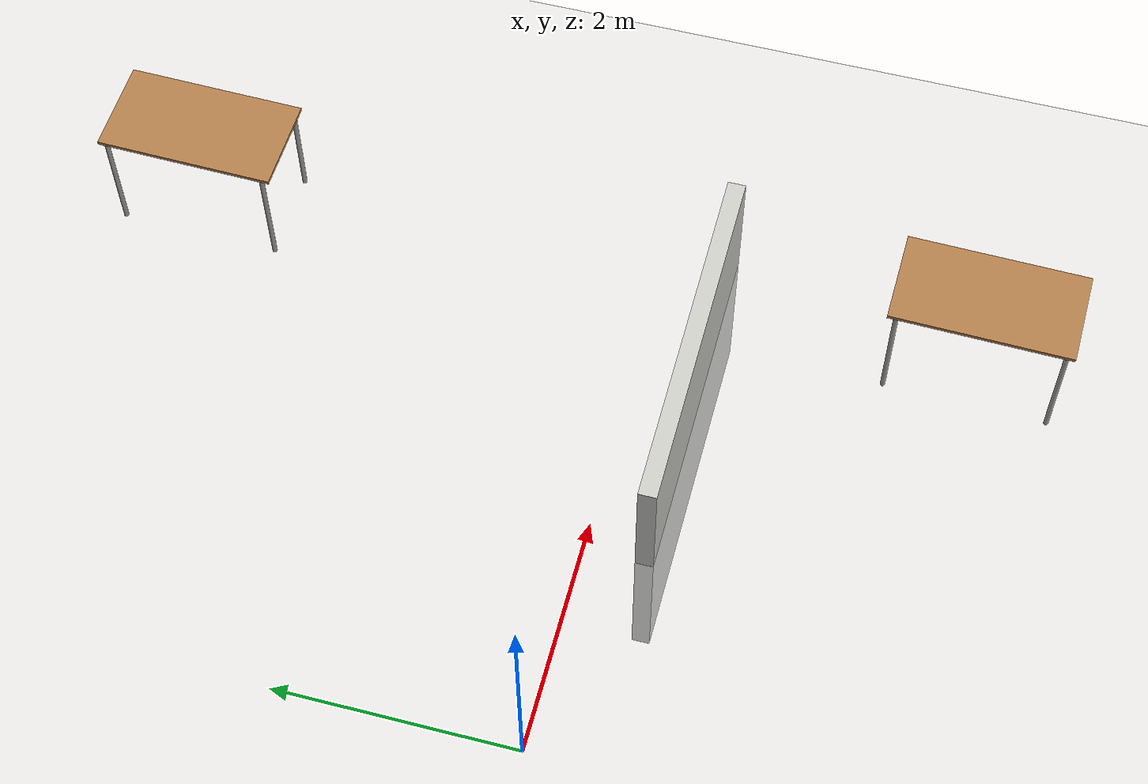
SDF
<sdf version="1.7">
 <world name="default">
  <light name="sun" type="directional">
   <pose>0 0 10 0 -0 0</pose>
   <diffuse>0.8 0.8 0.8 1</diffuse>
   <specular>0.2 0.2 0.2 1</specular>
   <attenuation>
    <range>1000</range>
    <constant>0.9</constant>
    <linear>0.01</linear>
    <quadratic>0.001</quadratic>
   </attenuation>
   <direction>-0.5 0.1 -0.9</direction>
   <spot><inner_angle>0</inner_angle><outer_angle>0</outer_angle><falloff>0</falloff></spot>
  </light>
  <model name="ground_plane">
   <static>1</static>
   <link name="link">
    <collision name="collision">
     <geometry><plane><normal>0 0 1</normal><size>100 100</size></plane></geometry>
     <surface>
      <contact><collide_bitmask>65535</collide_bitmask></contact>
      <friction><ode><mu>100</mu><mu2>50</mu2></ode></friction>
     </surface>
    </collision>
    <visual name="visual">
     <cast_shadows>0</cast_shadows>
     <geometry><plane><normal>0 0 1</normal><size>100 100</size></plane></geometry>
     <material>
      <script><uri>file://media/materials/scripts/gazebo.material</uri><name>Gazebo/Grey</name></script>
     </material>
    </visual>
   </link>
  </model>
  <gravity>0 0 -9.8</gravity>
  <magnetic_field>6e-06 2.3e-05 -4.2e-05</magnetic_field>
  <atmosphere type="adiabatic"/>
  <physics type="ode">
   <max_step_size>0.001</max_step_size>
   <real_time_factor>1</real_time_factor>
   <real_time_update_rate>1000</real_time_update_rate>
  </physics>
  <scene><ambient>0.4 0.4 0.4 1</ambient><background>0.7 0.7 0.7 1</background><shadows>1</shadows></scene>
  <audio><device>default</device></audio>
  <spherical_coordinates>
   <surface_model>EARTH_WGS84</surface_model>
   <latitude_deg>0</latitude_deg>
   <longitude_deg>0</longitude_deg>
   <elevation>0</elevation>
   <heading_deg>0</heading_deg>
  </spherical_coordinates>
  <model name="table">
   <static>1</static>
   <link name="link">
    <collision name="surface">
     <pose>0 0 1 0 -0 0</pose>
     <geometry><box><size>1.5 0.8 0.03</size></box></geometry>
     <surface><friction><ode><mu>0.6</mu><mu2>0.6</mu2></ode></friction></surface>
    </collision>
    <visual name="visual1">
     <pose>0 0 1 0 -0 0</pose>
     <geometry><box><size>1.5 0.8 0.03</size></box></geometry>
     <material>
      <script><uri>file://media/materials/scripts/gazebo.material</uri><name>Gazebo/Wood</name></script>
     </material>
    </visual>
    <collision name="front_left_leg">
     <pose>0.68 0.38 0.5 0 -0 0</pose>
     <geometry><cylinder><radius>0.02</radius><length>1</length></cylinder></geometry>
    </collision>
    <visual name="front_left_leg">
     <pose>0.68 0.38 0.5 0 -0 0</pose>
     <geometry><cylinder><radius>0.02</radius><length>1</length></cylinder></geometry>
     <material>
      <script><uri>file://media/materials/scripts/gazebo.material</uri><name>Gazebo/Grey</name></script>
     </material>
    </visual>
    <collision name="front_right_leg">
     <pose>0.68 -0.38 0.5 0 -0 0</pose>
     <geometry><cylinder><radius>0.02</radius><length>1</length></cylinder></geometry>
    </collision>
    <visual name="front_right_leg">
     <pose>0.68 -0.38 0.5 0 -0 0</pose>
     <geometry><cylinder><radius>0.02</radius><length>1</length></cylinder></geometry>
     <material>
      <script><uri>file://media/materials/scripts/gazebo.material</uri><name>Gazebo/Grey</name></script>
     </material>
    </visual>
    <collision name="back_right_leg">
     <pose>-0.68 -0.38 0.5 0 -0 0</pose>
     <geometry><cylinder><radius>0.02</radius><length>1</length></cylinder></geometry>
    </collision>
    <visual name="back_right_leg">
     <pose>-0.68 -0.38 0.5 0 -0 0</pose>
     <geometry><cylinder><radius>0.02</radius><length>1</length></cylinder></geometry>
     <material>
      <script><uri>file://media/materials/scripts/gazebo.material</uri><name>Gazebo/Grey</name></script>
     </material>
    </visual>
    <collision name="back_left_leg">
     <pose>-0.68 0.38 0.5 0 -0 0</pose>
     <geometry><cylinder><radius>0.02</radius><length>1</length></cylinder></geometry>
    </collision>
    <visual name="back_left_leg">
     <pose>-0.68 0.38 0.5 0 -0 0</pose>
     <geometry><cylinder><radius>0.02</radius><length>1</length></cylinder></geometry>
     <material>
      <script><uri>file://media/materials/scripts/gazebo.material</uri><name>Gazebo/Grey</name></script>
     </material>
    </visual>
   </link>
   <pose>4.27588 3.95942 0 0 0 -1.59076</pose>
  </model>
  <model name="table_clone">
   <static>1</static>
   <link name="link">
    <collision name="surface">
     <pose>0 0 1 0 -0 0</pose>
     <geometry><box><size>1.5 0.8 0.03</size></box></geometry>
     <surface><friction><ode><mu>0.6</mu><mu2>0.6</mu2></ode></friction></surface>
    </collision>
    <visual name="visual1">
     <pose>0 0 1 0 -0 0</pose>
     <geometry><box><size>1.5 0.8 0.03</size></box></geometry>
     <material>
      <script><uri>file://media/materials/scripts/gazebo.material</uri><name>Gazebo/Wood</name></script>
     </material>
    </visual>
    <collision name="front_left_leg">
     <pose>0.68 0.38 0.5 0 -0 0</pose>
     <geometry><cylinder><radius>0.02</radius><length>1</length></cylinder></geometry>
    </collision>
    <visual name="front_left_leg">
     <pose>0.68 0.38 0.5 0 -0 0</pose>
     <geometry><cylinder><radius>0.02</radius><length>1</length></cylinder></geometry>
     <material>
      <script><uri>file://media/materials/scripts/gazebo.material</uri><name>Gazebo/Grey</name></script>
     </material>
    </visual>
    <collision name="front_right_leg">
     <pose>0.68 -0.38 0.5 0 -0 0</pose>
     <geometry><cylinder><radius>0.02</radius><length>1</length></cylinder></geometry>
    </collision>
    <visual name="front_right_leg">
     <pose>0.68 -0.38 0.5 0 -0 0</pose>
     <geometry><cylinder><radius>0.02</radius><length>1</length></cylinder></geometry>
     <material>
      <script><uri>file://media/materials/scripts/gazebo.material</uri><name>Gazebo/Grey</name></script>
     </material>
    </visual>
    <collision name="back_right_leg">
     <pose>-0.68 -0.38 0.5 0 -0 0</pose>
     <geometry><cylinder><radius>0.02</radius><length>1</length></cylinder></geometry>
    </collision>
    <visual name="back_right_leg">
     <pose>-0.68 -0.38 0.5 0 -0 0</pose>
     <geometry><cylinder><radius>0.02</radius><length>1</length></cylinder></geometry>
     <material>
      <script><uri>file://media/materials/scripts/gazebo.material</uri><name>Gazebo/Grey</name></script>
     </material>
    </visual>
    <collision name="back_left_leg">
     <pose>-0.68 0.38 0.5 0 -0 0</pose>
     <geometry><cylinder><radius>0.02</radius><length>1</length></cylinder></geometry>
    </collision>
    <visual name="back_left_leg">
     <pose>-0.68 0.38 0.5 0 -0 0</pose>
     <geometry><cylinder><radius>0.02</radius><length>1</length></cylinder></geometry>
     <material>
      <script><uri>file://media/materials/scripts/gazebo.material</uri><name>Gazebo/Grey</name></script>
     </material>
    </visual>
   </link>
   <pose>4.25769 -2.68049 0 0 0 -1.59076</pose>
  </model>
  <model name="Untitled">
   <pose>2.3825 -0.2875 -1.39934 0 -0 0</pose>
   <link name="Wall_2">
    <collision name="Wall_2_Collision">
     <geometry><box><size>3 0.15 2.5</size></box></geometry>
     <pose>0 0 1.25 0 -0 0</pose>
    </collision>
    <visual name="Wall_2_Visual">
     <pose>0 0 1.25 0 -0 0</pose>
     <geometry><box><size>3 0.15 2.5</size></box></geometry>
     <material>
      <script><uri>file://media/materials/scripts/gazebo.material</uri><name>Gazebo/CeilingTiled</name></script>
      <ambient>1 1 1 1</ambient>
     </material>
     <meta><layer>0</layer></meta>
    </visual>
    <pose>0.8825 -0.2125 0 0 -0 0</pose>
   </link>
   <static>1</static>
  </model>
 </world>
</sdf>
